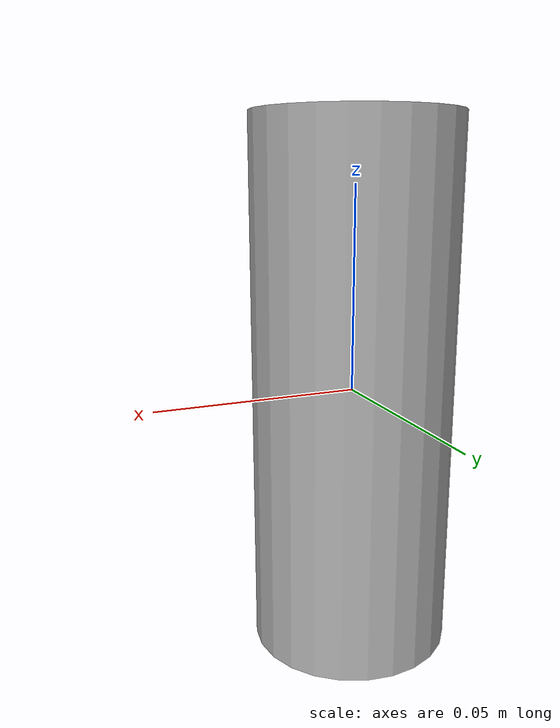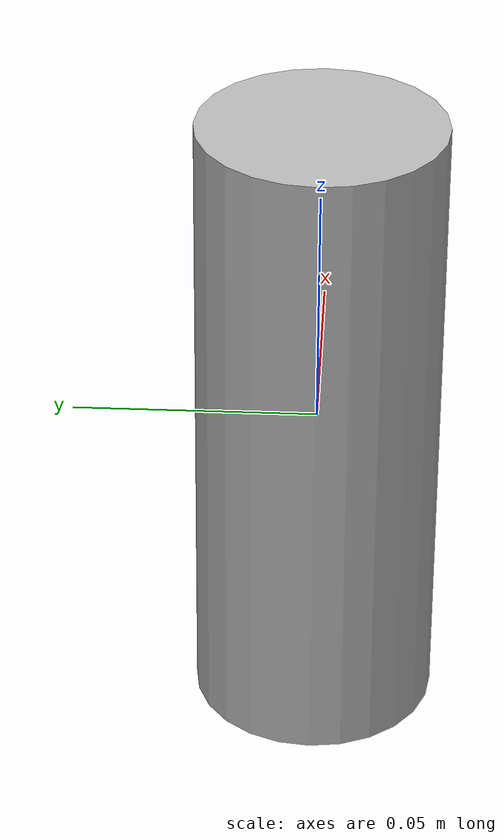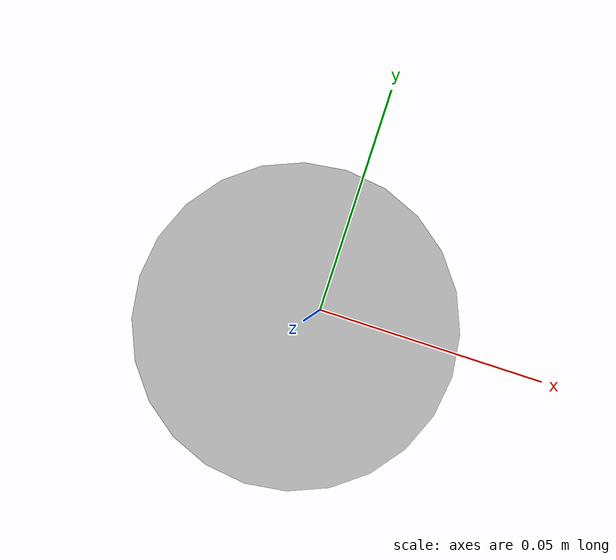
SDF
<?xml version="1.0" ?>
<sdf version='1.4'>
  <model name="bifrutas_tropical_can">
      <static>0</static>
      <link name='link'>
        <inertial>
          <mass>0.25</mass>
          <inertia>
            <ixx>0.000000</ixx>
            <ixy>0.000000</ixy>
            <ixz>0.000000</ixz>
            <iyy>0.000000</iyy>
            <iyz>0.000000</iyz>
            <izz>0.000000</izz>
          </inertia>
        </inertial>
        <collision name='collision'>
          <geometry>
            <cylinder>
              <radius>0.025</radius>
              <length>0.132</length>
            </cylinder>
          </geometry>
          <surface>
            <bounce/>
            <friction>
              <ode/>
            </friction>
            <contact>
              <ode/>
            </contact>
          </surface>
        </collision>
        <visual name='visual'>
          <geometry>
            <cylinder>
              <radius>0.025</radius>
              <length>0.132</length>
            </cylinder>
          </geometry>
          <material>
            <script>
              <uri>model://bifrutas_tropical_can/material/scripts</uri>
              <uri>model://bifrutas_tropical_can/material/textures</uri>
              <name>Custom/bifrutas_tropical_can</name>
            </script>
          </material>
        </visual>
        <velocity_decay>
          <linear>0.000000</linear>
          <angular>0.000000</angular>
        </velocity_decay>
        <self_collide>0</self_collide>
        <kinematic>0</kinematic>
        <gravity>1</gravity>
      </link>
  </model>
</sdf>
